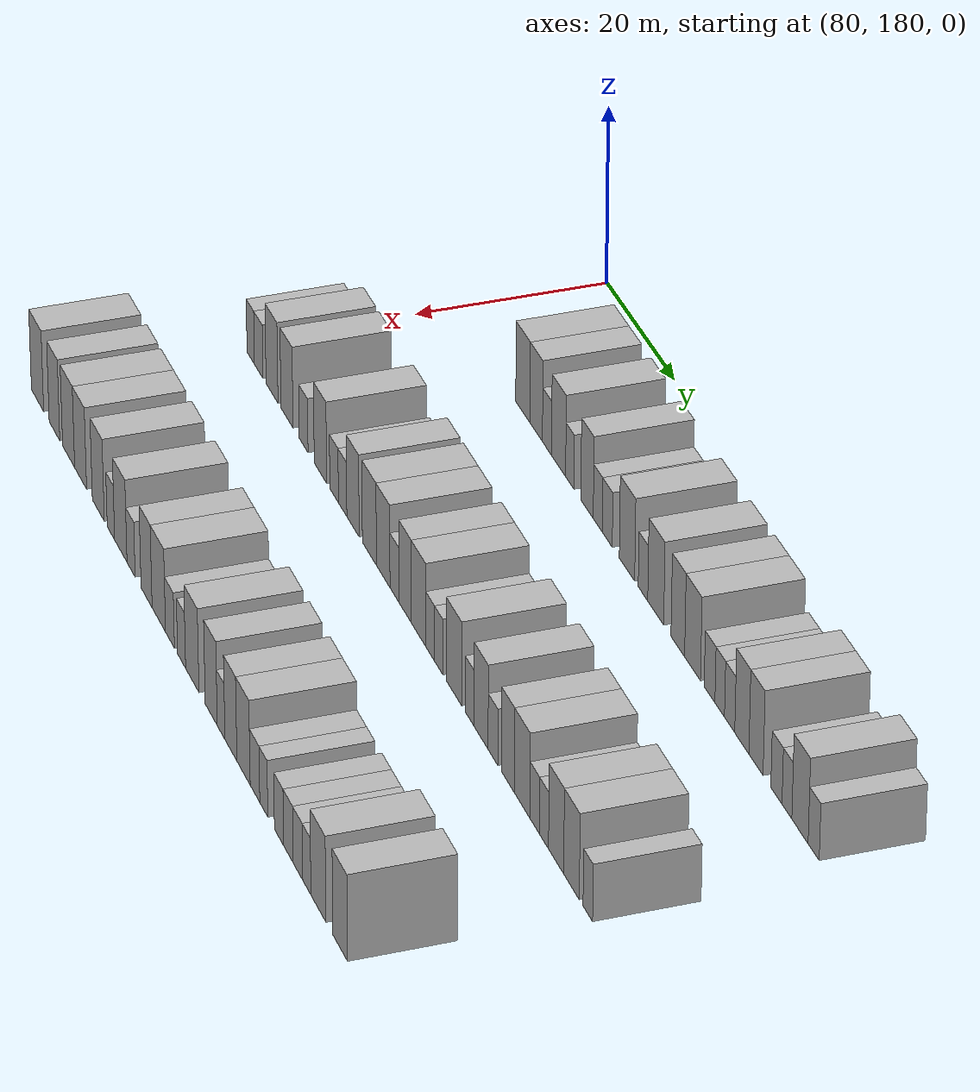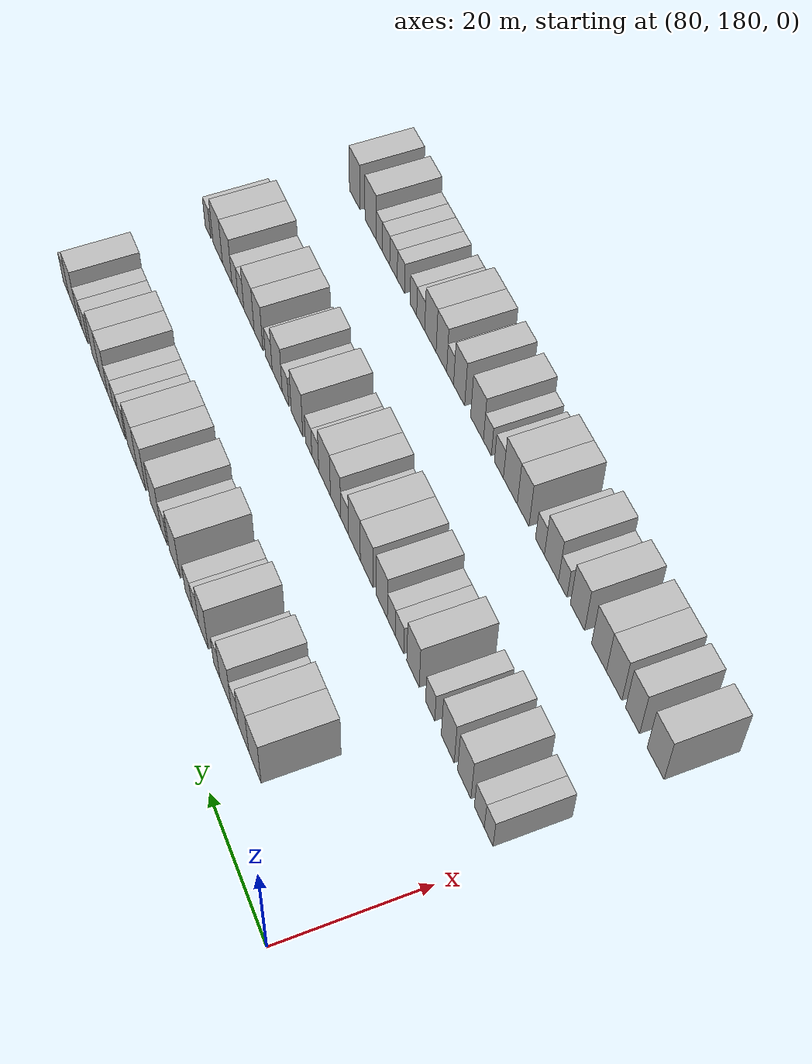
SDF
<sdf version="1.6">
 <world name="default">
  <model name="building_704">
   <static>1</static>
   <pose>91.0000 201.1701 0 0.000000 0.000000 0.000000</pose>
   <link name="link">
    <pose>0 0 4.50 0 0 0</pose>
    <collision name="collision"><geometry><box><size>10.0000 4.3020 9.0000</size></box></geometry></collision>
    <visual name="visual">
     <cast_shadows>0</cast_shadows>
     <geometry><box><size>10.0000 4.3020 9.0000</size></box></geometry>
     <material>
      <script>
       <uri>model://HANNAS_wall/materials/scripts</uri>
       <uri>model://HANNAS_wall/materials/textures</uri>
       <name>vrc/HANNAS_wall</name>
      </script>
     </material>
    </visual>
   </link>
  </model>
  <model name="building_705">
   <static>1</static>
   <pose>91.0000 205.1843 0 0.000000 0.000000 0.000000</pose>
   <link name="link">
    <pose>0 0 4.50 0 0 0</pose>
    <collision name="collision"><geometry><box><size>10.0000 3.7263 9.0000</size></box></geometry></collision>
    <visual name="visual">
     <cast_shadows>0</cast_shadows>
     <geometry><box><size>10.0000 3.7263 9.0000</size></box></geometry>
     <material>
      <script>
       <uri>model://HANNAS_wall/materials/scripts</uri>
       <uri>model://HANNAS_wall/materials/textures</uri>
       <name>vrc/HANNAS_wall</name>
      </script>
     </material>
    </visual>
   </link>
  </model>
  <model name="building_706">
   <static>1</static>
   <pose>91.0000 208.4048 0 0.000000 0.000000 0.000000</pose>
   <link name="link">
    <pose>0 0 3.00 0 0 0</pose>
    <collision name="collision"><geometry><box><size>10.0000 2.7147 6.0000</size></box></geometry></collision>
    <visual name="visual">
     <cast_shadows>0</cast_shadows>
     <geometry><box><size>10.0000 2.7147 6.0000</size></box></geometry>
     <material>
      <script>
       <uri>model://HANNAS_wall/materials/scripts</uri>
       <uri>model://HANNAS_wall/materials/textures</uri>
       <name>vrc/HANNAS_wall</name>
      </script>
     </material>
    </visual>
   </link>
  </model>
  <model name="building_707">
   <static>1</static>
   <pose>91.0000 211.8378 0 0.000000 0.000000 0.000000</pose>
   <link name="link">
    <pose>0 0 4.50 0 0 0</pose>
    <collision name="collision"><geometry><box><size>10.0000 4.1513 9.0000</size></box></geometry></collision>
    <visual name="visual">
     <cast_shadows>0</cast_shadows>
     <geometry><box><size>10.0000 4.1513 9.0000</size></box></geometry>
     <material>
      <script>
       <uri>model://HANNAS_wall/materials/scripts</uri>
       <uri>model://HANNAS_wall/materials/textures</uri>
       <name>vrc/HANNAS_wall</name>
      </script>
     </material>
    </visual>
   </link>
  </model>
  <model name="building_708">
   <static>1</static>
   <pose>91.0000 215.1305 0 0.000000 0.000000 0.000000</pose>
   <link name="link">
    <pose>0 0 3.00 0 0 0</pose>
    <collision name="collision"><geometry><box><size>10.0000 2.4341 6.0000</size></box></geometry></collision>
    <visual name="visual">
     <cast_shadows>0</cast_shadows>
     <geometry><box><size>10.0000 2.4341 6.0000</size></box></geometry>
     <material>
      <script>
       <uri>model://HANNAS_wall/materials/scripts</uri>
       <uri>model://HANNAS_wall/materials/textures</uri>
       <name>vrc/HANNAS_wall</name>
      </script>
     </material>
    </visual>
   </link>
  </model>
  <model name="building_709">
   <static>1</static>
   <pose>91.0000 220.1485 0 0.000000 0.000000 0.000000</pose>
   <link name="link">
    <pose>0 0 4.50 0 0 0</pose>
    <collision name="collision"><geometry><box><size>10.0000 3.6018 9.0000</size></box></geometry></collision>
    <visual name="visual">
     <cast_shadows>0</cast_shadows>
     <geometry><box><size>10.0000 3.6018 9.0000</size></box></geometry>
     <material>
      <script>
       <uri>model://HANNAS_wall/materials/scripts</uri>
       <uri>model://HANNAS_wall/materials/textures</uri>
       <name>vrc/HANNAS_wall</name>
      </script>
     </material>
    </visual>
   </link>
  </model>
  <model name="building_710">
   <static>1</static>
   <pose>91.0000 223.2338 0 0.000000 0.000000 0.000000</pose>
   <link name="link">
    <pose>0 0 3.00 0 0 0</pose>
    <collision name="collision"><geometry><box><size>10.0000 2.5689 6.0000</size></box></geometry></collision>
    <visual name="visual">
     <cast_shadows>0</cast_shadows>
     <geometry><box><size>10.0000 2.5689 6.0000</size></box></geometry>
     <material>
      <script>
       <uri>model://HANNAS_wall/materials/scripts</uri>
       <uri>model://HANNAS_wall/materials/textures</uri>
       <name>vrc/HANNAS_wall</name>
      </script>
     </material>
    </visual>
   </link>
  </model>
  <model name="building_711">
   <static>1</static>
   <pose>91.0000 225.9564 0 0.000000 0.000000 0.000000</pose>
   <link name="link">
    <pose>0 0 3.00 0 0 0</pose>
    <collision name="collision"><geometry><box><size>10.0000 2.8762 6.0000</size></box></geometry></collision>
    <visual name="visual">
     <cast_shadows>0</cast_shadows>
     <geometry><box><size>10.0000 2.8762 6.0000</size></box></geometry>
     <material>
      <script>
       <uri>model://HANNAS_wall/materials/scripts</uri>
       <uri>model://HANNAS_wall/materials/textures</uri>
       <name>vrc/HANNAS_wall</name>
      </script>
     </material>
    </visual>
   </link>
  </model>
  <model name="building_712">
   <static>1</static>
   <pose>91.0000 231.5591 0 0.000000 0.000000 0.000000</pose>
   <link name="link">
    <pose>0 0 4.50 0 0 0</pose>
    <collision name="collision"><geometry><box><size>10.0000 4.3292 9.0000</size></box></geometry></collision>
    <visual name="visual">
     <cast_shadows>0</cast_shadows>
     <geometry><box><size>10.0000 4.3292 9.0000</size></box></geometry>
     <material>
      <script>
       <uri>model://HANNAS_wall/materials/scripts</uri>
       <uri>model://HANNAS_wall/materials/textures</uri>
       <name>vrc/HANNAS_wall</name>
      </script>
     </material>
    </visual>
   </link>
  </model>
  <model name="building_713">
   <static>1</static>
   <pose>91.0000 236.0480 0 0.000000 0.000000 0.000000</pose>
   <link name="link">
    <pose>0 0 3.00 0 0 0</pose>
    <collision name="collision"><geometry><box><size>10.0000 2.6488 6.0000</size></box></geometry></collision>
    <visual name="visual">
     <cast_shadows>0</cast_shadows>
     <geometry><box><size>10.0000 2.6488 6.0000</size></box></geometry>
     <material>
      <script>
       <uri>model://HANNAS_wall/materials/scripts</uri>
       <uri>model://HANNAS_wall/materials/textures</uri>
       <name>vrc/HANNAS_wall</name>
      </script>
     </material>
    </visual>
   </link>
  </model>
  <model name="building_714">
   <static>1</static>
   <pose>91.0000 239.5825 0 0.000000 0.000000 0.000000</pose>
   <link name="link">
    <pose>0 0 4.50 0 0 0</pose>
    <collision name="collision"><geometry><box><size>10.0000 4.4201 9.0000</size></box></geometry></collision>
    <visual name="visual">
     <cast_shadows>0</cast_shadows>
     <geometry><box><size>10.0000 4.4201 9.0000</size></box></geometry>
     <material>
      <script>
       <uri>model://HANNAS_wall/materials/scripts</uri>
       <uri>model://HANNAS_wall/materials/textures</uri>
       <name>vrc/HANNAS_wall</name>
      </script>
     </material>
    </visual>
   </link>
  </model>
  <model name="building_715">
   <static>1</static>
   <pose>91.0000 245.6507 0 0.000000 0.000000 0.000000</pose>
   <link name="link">
    <pose>0 0 4.50 0 0 0</pose>
    <collision name="collision"><geometry><box><size>10.0000 3.7163 9.0000</size></box></geometry></collision>
    <visual name="visual">
     <cast_shadows>0</cast_shadows>
     <geometry><box><size>10.0000 3.7163 9.0000</size></box></geometry>
     <material>
      <script>
       <uri>model://HANNAS_wall/materials/scripts</uri>
       <uri>model://HANNAS_wall/materials/textures</uri>
       <name>vrc/HANNAS_wall</name>
      </script>
     </material>
    </visual>
   </link>
  </model>
  <model name="building_716">
   <static>1</static>
   <pose>91.0000 249.6491 0 0.000000 0.000000 0.000000</pose>
   <link name="link">
    <pose>0 0 4.50 0 0 0</pose>
    <collision name="collision"><geometry><box><size>10.0000 4.2806 9.0000</size></box></geometry></collision>
    <visual name="visual">
     <cast_shadows>0</cast_shadows>
     <geometry><box><size>10.0000 4.2806 9.0000</size></box></geometry>
     <material>
      <script>
       <uri>model://HANNAS_wall/materials/scripts</uri>
       <uri>model://HANNAS_wall/materials/textures</uri>
       <name>vrc/HANNAS_wall</name>
      </script>
     </material>
    </visual>
   </link>
  </model>
  <model name="building_717">
   <static>1</static>
   <pose>91.0000 254.2260 0 0.000000 0.000000 0.000000</pose>
   <link name="link">
    <pose>0 0 3.00 0 0 0</pose>
    <collision name="collision"><geometry><box><size>10.0000 2.8731 6.0000</size></box></geometry></collision>
    <visual name="visual">
     <cast_shadows>0</cast_shadows>
     <geometry><box><size>10.0000 2.8731 6.0000</size></box></geometry>
     <material>
      <script>
       <uri>model://HANNAS_wall/materials/scripts</uri>
       <uri>model://HANNAS_wall/materials/textures</uri>
       <name>vrc/HANNAS_wall</name>
      </script>
     </material>
    </visual>
   </link>
  </model>
  <model name="building_718">
   <static>1</static>
   <pose>91.0000 256.9283 0 0.000000 0.000000 0.000000</pose>
   <link name="link">
    <pose>0 0 3.00 0 0 0</pose>
    <collision name="collision"><geometry><box><size>10.0000 2.5315 6.0000</size></box></geometry></collision>
    <visual name="visual">
     <cast_shadows>0</cast_shadows>
     <geometry><box><size>10.0000 2.5315 6.0000</size></box></geometry>
     <material>
      <script>
       <uri>model://HANNAS_wall/materials/scripts</uri>
       <uri>model://HANNAS_wall/materials/textures</uri>
       <name>vrc/HANNAS_wall</name>
      </script>
     </material>
    </visual>
   </link>
  </model>
  <model name="building_719">
   <static>1</static>
   <pose>91.0000 259.5495 0 0.000000 0.000000 0.000000</pose>
   <link name="link">
    <pose>0 0 3.00 0 0 0</pose>
    <collision name="collision"><geometry><box><size>10.0000 2.7108 6.0000</size></box></geometry></collision>
    <visual name="visual">
     <cast_shadows>0</cast_shadows>
     <geometry><box><size>10.0000 2.7108 6.0000</size></box></geometry>
     <material>
      <script>
       <uri>model://HANNAS_wall/materials/scripts</uri>
       <uri>model://HANNAS_wall/materials/textures</uri>
       <name>vrc/HANNAS_wall</name>
      </script>
     </material>
    </visual>
   </link>
  </model>
  <model name="building_720">
   <static>1</static>
   <pose>91.0000 262.7497 0 0.000000 0.000000 0.000000</pose>
   <link name="link">
    <pose>0 0 4.50 0 0 0</pose>
    <collision name="collision"><geometry><box><size>10.0000 3.6894 9.0000</size></box></geometry></collision>
    <visual name="visual">
     <cast_shadows>0</cast_shadows>
     <geometry><box><size>10.0000 3.6894 9.0000</size></box></geometry>
     <material>
      <script>
       <uri>model://HANNAS_wall/materials/scripts</uri>
       <uri>model://HANNAS_wall/materials/textures</uri>
       <name>vrc/HANNAS_wall</name>
      </script>
     </material>
    </visual>
   </link>
  </model>
  <model name="building_721">
   <static>1</static>
   <pose>91.0000 266.4374 0 0.000000 0.000000 0.000000</pose>
   <link name="link">
    <pose>0 0 4.50 0 0 0</pose>
    <collision name="collision"><geometry><box><size>10.0000 3.6861 9.0000</size></box></geometry></collision>
    <visual name="visual">
     <cast_shadows>0</cast_shadows>
     <geometry><box><size>10.0000 3.6861 9.0000</size></box></geometry>
     <material>
      <script>
       <uri>model://HANNAS_wall/materials/scripts</uri>
       <uri>model://HANNAS_wall/materials/textures</uri>
       <name>vrc/HANNAS_wall</name>
      </script>
     </material>
    </visual>
   </link>
  </model>
  <model name="building_722">
   <static>1</static>
   <pose>91.0000 271.7103 0 0.000000 0.000000 0.000000</pose>
   <link name="link">
    <pose>0 0 3.00 0 0 0</pose>
    <collision name="collision"><geometry><box><size>10.0000 2.8596 6.0000</size></box></geometry></collision>
    <visual name="visual">
     <cast_shadows>0</cast_shadows>
     <geometry><box><size>10.0000 2.8596 6.0000</size></box></geometry>
     <material>
      <script>
       <uri>model://HANNAS_wall/materials/scripts</uri>
       <uri>model://HANNAS_wall/materials/textures</uri>
       <name>vrc/HANNAS_wall</name>
      </script>
     </material>
    </visual>
   </link>
  </model>
  <model name="building_723">
   <static>1</static>
   <pose>91.0000 274.3930 0 0.000000 0.000000 0.000000</pose>
   <link name="link">
    <pose>0 0 3.00 0 0 0</pose>
    <collision name="collision"><geometry><box><size>10.0000 2.5060 6.0000</size></box></geometry></collision>
    <visual name="visual">
     <cast_shadows>0</cast_shadows>
     <geometry><box><size>10.0000 2.5060 6.0000</size></box></geometry>
     <material>
      <script>
       <uri>model://HANNAS_wall/materials/scripts</uri>
       <uri>model://HANNAS_wall/materials/textures</uri>
       <name>vrc/HANNAS_wall</name>
      </script>
     </material>
    </visual>
   </link>
  </model>
  <model name="building_724">
   <static>1</static>
   <pose>91.0000 277.7002 0 0.000000 0.000000 0.000000</pose>
   <link name="link">
    <pose>0 0 4.50 0 0 0</pose>
    <collision name="collision"><geometry><box><size>10.0000 4.1084 9.0000</size></box></geometry></collision>
    <visual name="visual">
     <cast_shadows>0</cast_shadows>
     <geometry><box><size>10.0000 4.1084 9.0000</size></box></geometry>
     <material>
      <script>
       <uri>model://HANNAS_wall/materials/scripts</uri>
       <uri>model://HANNAS_wall/materials/textures</uri>
       <name>vrc/HANNAS_wall</name>
      </script>
     </material>
    </visual>
   </link>
  </model>
  <model name="building_725">
   <static>1</static>
   <pose>91.0000 281.1459 0 0.000000 0.000000 0.000000</pose>
   <link name="link">
    <pose>0 0 3.00 0 0 0</pose>
    <collision name="collision"><geometry><box><size>10.0000 2.7830 6.0000</size></box></geometry></collision>
    <visual name="visual">
     <cast_shadows>0</cast_shadows>
     <geometry><box><size>10.0000 2.7830 6.0000</size></box></geometry>
     <material>
      <script>
       <uri>model://HANNAS_wall/materials/scripts</uri>
       <uri>model://HANNAS_wall/materials/textures</uri>
       <name>vrc/HANNAS_wall</name>
      </script>
     </material>
    </visual>
   </link>
  </model>
  <model name="building_885">
   <static>1</static>
   <pose>113.0000 183.0540 0 0.000000 0.000000 0.000000</pose>
   <link name="link">
    <pose>0 0 3.00 0 0 0</pose>
    <collision name="collision"><geometry><box><size>10.0000 2.4901 6.0000</size></box></geometry></collision>
    <visual name="visual">
     <cast_shadows>0</cast_shadows>
     <geometry><box><size>10.0000 2.4901 6.0000</size></box></geometry>
     <material>
      <script>
       <uri>model://HANNAS_wall/materials/scripts</uri>
       <uri>model://HANNAS_wall/materials/textures</uri>
       <name>vrc/HANNAS_wall</name>
      </script>
     </material>
    </visual>
   </link>
  </model>
  <model name="building_886">
   <static>1</static>
   <pose>113.0000 185.7447 0 0.000000 0.000000 0.000000</pose>
   <link name="link">
    <pose>0 0 3.00 0 0 0</pose>
    <collision name="collision"><geometry><box><size>10.0000 2.8913 6.0000</size></box></geometry></collision>
    <visual name="visual">
     <cast_shadows>0</cast_shadows>
     <geometry><box><size>10.0000 2.8913 6.0000</size></box></geometry>
     <material>
      <script>
       <uri>model://HANNAS_wall/materials/scripts</uri>
       <uri>model://HANNAS_wall/materials/textures</uri>
       <name>vrc/HANNAS_wall</name>
      </script>
     </material>
    </visual>
   </link>
  </model>
  <model name="building_887">
   <static>1</static>
   <pose>113.0000 190.1721 0 0.000000 0.000000 0.000000</pose>
   <link name="link">
    <pose>0 0 4.50 0 0 0</pose>
    <collision name="collision"><geometry><box><size>10.0000 3.9636 9.0000</size></box></geometry></collision>
    <visual name="visual">
     <cast_shadows>0</cast_shadows>
     <geometry><box><size>10.0000 3.9636 9.0000</size></box></geometry>
     <material>
      <script>
       <uri>model://HANNAS_wall/materials/scripts</uri>
       <uri>model://HANNAS_wall/materials/textures</uri>
       <name>vrc/HANNAS_wall</name>
      </script>
     </material>
    </visual>
   </link>
  </model>
  <model name="building_888">
   <static>1</static>
   <pose>113.0000 195.1261 0 0.000000 0.000000 0.000000</pose>
   <link name="link">
    <pose>0 0 4.50 0 0 0</pose>
    <collision name="collision"><geometry><box><size>10.0000 3.9443 9.0000</size></box></geometry></collision>
    <visual name="visual">
     <cast_shadows>0</cast_shadows>
     <geometry><box><size>10.0000 3.9443 9.0000</size></box></geometry>
     <material>
      <script>
       <uri>model://HANNAS_wall/materials/scripts</uri>
       <uri>model://HANNAS_wall/materials/textures</uri>
       <name>vrc/HANNAS_wall</name>
      </script>
     </material>
    </visual>
   </link>
  </model>
  <model name="building_889">
   <static>1</static>
   <pose>113.0000 200.5378 0 0.000000 0.000000 0.000000</pose>
   <link name="link">
    <pose>0 0 3.00 0 0 0</pose>
    <collision name="collision"><geometry><box><size>10.0000 2.8791 6.0000</size></box></geometry></collision>
    <visual name="visual">
     <cast_shadows>0</cast_shadows>
     <geometry><box><size>10.0000 2.8791 6.0000</size></box></geometry>
     <material>
      <script>
       <uri>model://HANNAS_wall/materials/scripts</uri>
       <uri>model://HANNAS_wall/materials/textures</uri>
       <name>vrc/HANNAS_wall</name>
      </script>
     </material>
    </visual>
   </link>
  </model>
  <model name="building_890">
   <static>1</static>
   <pose>113.0000 205.9722 0 0.000000 0.000000 0.000000</pose>
   <link name="link">
    <pose>0 0 4.50 0 0 0</pose>
    <collision name="collision"><geometry><box><size>10.0000 3.9897 9.0000</size></box></geometry></collision>
    <visual name="visual">
     <cast_shadows>0</cast_shadows>
     <geometry><box><size>10.0000 3.9897 9.0000</size></box></geometry>
     <material>
      <script>
       <uri>model://HANNAS_wall/materials/scripts</uri>
       <uri>model://HANNAS_wall/materials/textures</uri>
       <name>vrc/HANNAS_wall</name>
      </script>
     </material>
    </visual>
   </link>
  </model>
  <model name="building_891">
   <static>1</static>
   <pose>113.0000 210.3285 0 0.000000 0.000000 0.000000</pose>
   <link name="link">
    <pose>0 0 3.00 0 0 0</pose>
    <collision name="collision"><geometry><box><size>10.0000 2.7229 6.0000</size></box></geometry></collision>
    <visual name="visual">
     <cast_shadows>0</cast_shadows>
     <geometry><box><size>10.0000 2.7229 6.0000</size></box></geometry>
     <material>
      <script>
       <uri>model://HANNAS_wall/materials/scripts</uri>
       <uri>model://HANNAS_wall/materials/textures</uri>
       <name>vrc/HANNAS_wall</name>
      </script>
     </material>
    </visual>
   </link>
  </model>
  <model name="building_892">
   <static>1</static>
   <pose>113.0000 213.0136 0 0.000000 0.000000 0.000000</pose>
   <link name="link">
    <pose>0 0 3.00 0 0 0</pose>
    <collision name="collision"><geometry><box><size>10.0000 2.6472 6.0000</size></box></geometry></collision>
    <visual name="visual">
     <cast_shadows>0</cast_shadows>
     <geometry><box><size>10.0000 2.6472 6.0000</size></box></geometry>
     <material>
      <script>
       <uri>model://HANNAS_wall/materials/scripts</uri>
       <uri>model://HANNAS_wall/materials/textures</uri>
       <name>vrc/HANNAS_wall</name>
      </script>
     </material>
    </visual>
   </link>
  </model>
  <model name="building_893">
   <static>1</static>
   <pose>113.0000 216.2671 0 0.000000 0.000000 0.000000</pose>
   <link name="link">
    <pose>0 0 4.50 0 0 0</pose>
    <collision name="collision"><geometry><box><size>10.0000 3.8598 9.0000</size></box></geometry></collision>
    <visual name="visual">
     <cast_shadows>0</cast_shadows>
     <geometry><box><size>10.0000 3.8598 9.0000</size></box></geometry>
     <material>
      <script>
       <uri>model://HANNAS_wall/materials/scripts</uri>
       <uri>model://HANNAS_wall/materials/textures</uri>
       <name>vrc/HANNAS_wall</name>
      </script>
     </material>
    </visual>
   </link>
  </model>
  <model name="building_894">
   <static>1</static>
   <pose>113.0000 221.3694 0 0.000000 0.000000 0.000000</pose>
   <link name="link">
    <pose>0 0 4.50 0 0 0</pose>
    <collision name="collision"><geometry><box><size>10.0000 4.3448 9.0000</size></box></geometry></collision>
    <visual name="visual">
     <cast_shadows>0</cast_shadows>
     <geometry><box><size>10.0000 4.3448 9.0000</size></box></geometry>
     <material>
      <script>
       <uri>model://HANNAS_wall/materials/scripts</uri>
       <uri>model://HANNAS_wall/materials/textures</uri>
       <name>vrc/HANNAS_wall</name>
      </script>
     </material>
    </visual>
   </link>
  </model>
  <model name="building_895">
   <static>1</static>
   <pose>113.0000 225.6153 0 0.000000 0.000000 0.000000</pose>
   <link name="link">
    <pose>0 0 4.50 0 0 0</pose>
    <collision name="collision"><geometry><box><size>10.0000 4.1471 9.0000</size></box></geometry></collision>
    <visual name="visual">
     <cast_shadows>0</cast_shadows>
     <geometry><box><size>10.0000 4.1471 9.0000</size></box></geometry>
     <material>
      <script>
       <uri>model://HANNAS_wall/materials/scripts</uri>
       <uri>model://HANNAS_wall/materials/textures</uri>
       <name>vrc/HANNAS_wall</name>
      </script>
     </material>
    </visual>
   </link>
  </model>
  <model name="building_896">
   <static>1</static>
   <pose>113.0000 229.0577 0 0.000000 0.000000 0.000000</pose>
   <link name="link">
    <pose>0 0 3.00 0 0 0</pose>
    <collision name="collision"><geometry><box><size>10.0000 2.7376 6.0000</size></box></geometry></collision>
    <visual name="visual">
     <cast_shadows>0</cast_shadows>
     <geometry><box><size>10.0000 2.7376 6.0000</size></box></geometry>
     <material>
      <script>
       <uri>model://HANNAS_wall/materials/scripts</uri>
       <uri>model://HANNAS_wall/materials/textures</uri>
       <name>vrc/HANNAS_wall</name>
      </script>
     </material>
    </visual>
   </link>
  </model>
  <model name="building_897">
   <static>1</static>
   <pose>113.0000 232.2977 0 0.000000 0.000000 0.000000</pose>
   <link name="link">
    <pose>0 0 4.50 0 0 0</pose>
    <collision name="collision"><geometry><box><size>10.0000 3.7424 9.0000</size></box></geometry></collision>
    <visual name="visual">
     <cast_shadows>0</cast_shadows>
     <geometry><box><size>10.0000 3.7424 9.0000</size></box></geometry>
     <material>
      <script>
       <uri>model://HANNAS_wall/materials/scripts</uri>
       <uri>model://HANNAS_wall/materials/textures</uri>
       <name>vrc/HANNAS_wall</name>
      </script>
     </material>
    </visual>
   </link>
  </model>
  <model name="building_898">
   <static>1</static>
   <pose>113.0000 236.3201 0 0.000000 0.000000 0.000000</pose>
   <link name="link">
    <pose>0 0 4.50 0 0 0</pose>
    <collision name="collision"><geometry><box><size>10.0000 4.3025 9.0000</size></box></geometry></collision>
    <visual name="visual">
     <cast_shadows>0</cast_shadows>
     <geometry><box><size>10.0000 4.3025 9.0000</size></box></geometry>
     <material>
      <script>
       <uri>model://HANNAS_wall/materials/scripts</uri>
       <uri>model://HANNAS_wall/materials/textures</uri>
       <name>vrc/HANNAS_wall</name>
      </script>
     </material>
    </visual>
   </link>
  </model>
  <model name="building_899">
   <static>1</static>
   <pose>113.0000 239.7786 0 0.000000 0.000000 0.000000</pose>
   <link name="link">
    <pose>0 0 3.00 0 0 0</pose>
    <collision name="collision"><geometry><box><size>10.0000 2.6145 6.0000</size></box></geometry></collision>
    <visual name="visual">
     <cast_shadows>0</cast_shadows>
     <geometry><box><size>10.0000 2.6145 6.0000</size></box></geometry>
     <material>
      <script>
       <uri>model://HANNAS_wall/materials/scripts</uri>
       <uri>model://HANNAS_wall/materials/textures</uri>
       <name>vrc/HANNAS_wall</name>
      </script>
     </material>
    </visual>
   </link>
  </model>
  <model name="building_900">
   <static>1</static>
   <pose>113.0000 242.2951 0 0.000000 0.000000 0.000000</pose>
   <link name="link">
    <pose>0 0 3.00 0 0 0</pose>
    <collision name="collision"><geometry><box><size>10.0000 2.4185 6.0000</size></box></geometry></collision>
    <visual name="visual">
     <cast_shadows>0</cast_shadows>
     <geometry><box><size>10.0000 2.4185 6.0000</size></box></geometry>
     <material>
      <script>
       <uri>model://HANNAS_wall/materials/scripts</uri>
       <uri>model://HANNAS_wall/materials/textures</uri>
       <name>vrc/HANNAS_wall</name>
      </script>
     </material>
    </visual>
   </link>
  </model>
  <model name="building_901">
   <static>1</static>
   <pose>113.0000 246.7437 0 0.000000 0.000000 0.000000</pose>
   <link name="link">
    <pose>0 0 4.50 0 0 0</pose>
    <collision name="collision"><geometry><box><size>10.0000 4.4786 9.0000</size></box></geometry></collision>
    <visual name="visual">
     <cast_shadows>0</cast_shadows>
     <geometry><box><size>10.0000 4.4786 9.0000</size></box></geometry>
     <material>
      <script>
       <uri>model://HANNAS_wall/materials/scripts</uri>
       <uri>model://HANNAS_wall/materials/textures</uri>
       <name>vrc/HANNAS_wall</name>
      </script>
     </material>
    </visual>
   </link>
  </model>
  <model name="building_902">
   <static>1</static>
   <pose>113.0000 251.2729 0 0.000000 0.000000 0.000000</pose>
   <link name="link">
    <pose>0 0 3.00 0 0 0</pose>
    <collision name="collision"><geometry><box><size>10.0000 2.5800 6.0000</size></box></geometry></collision>
    <visual name="visual">
     <cast_shadows>0</cast_shadows>
     <geometry><box><size>10.0000 2.5800 6.0000</size></box></geometry>
     <material>
      <script>
       <uri>model://HANNAS_wall/materials/scripts</uri>
       <uri>model://HANNAS_wall/materials/textures</uri>
       <name>vrc/HANNAS_wall</name>
      </script>
     </material>
    </visual>
   </link>
  </model>
  <model name="building_903">
   <static>1</static>
   <pose>113.0000 254.5674 0 0.000000 0.000000 0.000000</pose>
   <link name="link">
    <pose>0 0 4.50 0 0 0</pose>
    <collision name="collision"><geometry><box><size>10.0000 4.0089 9.0000</size></box></geometry></collision>
    <visual name="visual">
     <cast_shadows>0</cast_shadows>
     <geometry><box><size>10.0000 4.0089 9.0000</size></box></geometry>
     <material>
      <script>
       <uri>model://HANNAS_wall/materials/scripts</uri>
       <uri>model://HANNAS_wall/materials/textures</uri>
       <name>vrc/HANNAS_wall</name>
      </script>
     </material>
    </visual>
   </link>
  </model>
  <model name="building_904">
   <static>1</static>
   <pose>113.0000 257.9487 0 0.000000 0.000000 0.000000</pose>
   <link name="link">
    <pose>0 0 3.00 0 0 0</pose>
    <collision name="collision"><geometry><box><size>10.0000 2.7537 6.0000</size></box></geometry></collision>
    <visual name="visual">
     <cast_shadows>0</cast_shadows>
     <geometry><box><size>10.0000 2.7537 6.0000</size></box></geometry>
     <material>
      <script>
       <uri>model://HANNAS_wall/materials/scripts</uri>
       <uri>model://HANNAS_wall/materials/textures</uri>
       <name>vrc/HANNAS_wall</name>
      </script>
     </material>
    </visual>
   </link>
  </model>
  <model name="building_905">
   <static>1</static>
   <pose>113.0000 262.1372 0 0.000000 0.000000 0.000000</pose>
   <link name="link">
    <pose>0 0 4.50 0 0 0</pose>
    <collision name="collision"><geometry><box><size>10.0000 3.6233 9.0000</size></box></geometry></collision>
    <visual name="visual">
     <cast_shadows>0</cast_shadows>
     <geometry><box><size>10.0000 3.6233 9.0000</size></box></geometry>
     <material>
      <script>
       <uri>model://HANNAS_wall/materials/scripts</uri>
       <uri>model://HANNAS_wall/materials/textures</uri>
       <name>vrc/HANNAS_wall</name>
      </script>
     </material>
    </visual>
   </link>
  </model>
  <model name="building_906">
   <static>1</static>
   <pose>113.0000 266.1116 0 0.000000 0.000000 0.000000</pose>
   <link name="link">
    <pose>0 0 4.50 0 0 0</pose>
    <collision name="collision"><geometry><box><size>10.0000 4.3255 9.0000</size></box></geometry></collision>
    <visual name="visual">
     <cast_shadows>0</cast_shadows>
     <geometry><box><size>10.0000 4.3255 9.0000</size></box></geometry>
     <material>
      <script>
       <uri>model://HANNAS_wall/materials/scripts</uri>
       <uri>model://HANNAS_wall/materials/textures</uri>
       <name>vrc/HANNAS_wall</name>
      </script>
     </material>
    </visual>
   </link>
  </model>
  <model name="building_907">
   <static>1</static>
   <pose>113.0000 269.5659 0 0.000000 0.000000 0.000000</pose>
   <link name="link">
    <pose>0 0 3.00 0 0 0</pose>
    <collision name="collision"><geometry><box><size>10.0000 2.5829 6.0000</size></box></geometry></collision>
    <visual name="visual">
     <cast_shadows>0</cast_shadows>
     <geometry><box><size>10.0000 2.5829 6.0000</size></box></geometry>
     <material>
      <script>
       <uri>model://HANNAS_wall/materials/scripts</uri>
       <uri>model://HANNAS_wall/materials/textures</uri>
       <name>vrc/HANNAS_wall</name>
      </script>
     </material>
    </visual>
   </link>
  </model>
  <model name="building_908">
   <static>1</static>
   <pose>113.0000 272.1192 0 0.000000 0.000000 0.000000</pose>
   <link name="link">
    <pose>0 0 3.00 0 0 0</pose>
    <collision name="collision"><geometry><box><size>10.0000 2.5236 6.0000</size></box></geometry></collision>
    <visual name="visual">
     <cast_shadows>0</cast_shadows>
     <geometry><box><size>10.0000 2.5236 6.0000</size></box></geometry>
     <material>
      <script>
       <uri>model://HANNAS_wall/materials/scripts</uri>
       <uri>model://HANNAS_wall/materials/textures</uri>
       <name>vrc/HANNAS_wall</name>
      </script>
     </material>
    </visual>
   </link>
  </model>
  <model name="building_909">
   <static>1</static>
   <pose>113.0000 275.4424 0 0.000000 0.000000 0.000000</pose>
   <link name="link">
    <pose>0 0 4.50 0 0 0</pose>
    <collision name="collision"><geometry><box><size>10.0000 4.1228 9.0000</size></box></geometry></collision>
    <visual name="visual">
     <cast_shadows>0</cast_shadows>
     <geometry><box><size>10.0000 4.1228 9.0000</size></box></geometry>
     <material>
      <script>
       <uri>model://HANNAS_wall/materials/scripts</uri>
       <uri>model://HANNAS_wall/materials/textures</uri>
       <name>vrc/HANNAS_wall</name>
      </script>
     </material>
    </visual>
   </link>
  </model>
  <model name="building_910">
   <static>1</static>
   <pose>113.0000 279.5978 0 0.000000 0.000000 0.000000</pose>
   <link name="link">
    <pose>0 0 4.50 0 0 0</pose>
    <collision name="collision"><geometry><box><size>10.0000 4.1882 9.0000</size></box></geometry></collision>
    <visual name="visual">
     <cast_shadows>0</cast_shadows>
     <geometry><box><size>10.0000 4.1882 9.0000</size></box></geometry>
     <material>
      <script>
       <uri>model://HANNAS_wall/materials/scripts</uri>
       <uri>model://HANNAS_wall/materials/textures</uri>
       <name>vrc/HANNAS_wall</name>
      </script>
     </material>
    </visual>
   </link>
  </model>
  <model name="building_911">
   <static>1</static>
   <pose>113.0000 283.9622 0 0.000000 0.000000 0.000000</pose>
   <link name="link">
    <pose>0 0 3.00 0 0 0</pose>
    <collision name="collision"><geometry><box><size>10.0000 2.5406 6.0000</size></box></geometry></collision>
    <visual name="visual">
     <cast_shadows>0</cast_shadows>
     <geometry><box><size>10.0000 2.5406 6.0000</size></box></geometry>
     <material>
      <script>
       <uri>model://HANNAS_wall/materials/scripts</uri>
       <uri>model://HANNAS_wall/materials/textures</uri>
       <name>vrc/HANNAS_wall</name>
      </script>
     </material>
    </visual>
   </link>
  </model>
  <model name="building_1064">
   <static>1</static>
   <pose>135.0000 184.3835 0 0.000000 0.000000 0.000000</pose>
   <link name="link">
    <pose>0 0 4.50 0 0 0</pose>
    <collision name="collision"><geometry><box><size>10.0000 4.4313 9.0000</size></box></geometry></collision>
    <visual name="visual">
     <cast_shadows>0</cast_shadows>
     <geometry><box><size>10.0000 4.4313 9.0000</size></box></geometry>
     <material>
      <script>
       <uri>model://HANNAS_wall/materials/scripts</uri>
       <uri>model://HANNAS_wall/materials/textures</uri>
       <name>vrc/HANNAS_wall</name>
      </script>
     </material>
    </visual>
   </link>
  </model>
  <model name="building_1065">
   <static>1</static>
   <pose>135.0000 190.4942 0 0.000000 0.000000 0.000000</pose>
   <link name="link">
    <pose>0 0 4.50 0 0 0</pose>
    <collision name="collision"><geometry><box><size>10.0000 3.7901 9.0000</size></box></geometry></collision>
    <visual name="visual">
     <cast_shadows>0</cast_shadows>
     <geometry><box><size>10.0000 3.7901 9.0000</size></box></geometry>
     <material>
      <script>
       <uri>model://HANNAS_wall/materials/scripts</uri>
       <uri>model://HANNAS_wall/materials/textures</uri>
       <name>vrc/HANNAS_wall</name>
      </script>
     </material>
    </visual>
   </link>
  </model>
  <model name="building_1066">
   <static>1</static>
   <pose>135.0000 195.5281 0 0.000000 0.000000 0.000000</pose>
   <link name="link">
    <pose>0 0 4.50 0 0 0</pose>
    <collision name="collision"><geometry><box><size>10.0000 4.2776 9.0000</size></box></geometry></collision>
    <visual name="visual">
     <cast_shadows>0</cast_shadows>
     <geometry><box><size>10.0000 4.2776 9.0000</size></box></geometry>
     <material>
      <script>
       <uri>model://HANNAS_wall/materials/scripts</uri>
       <uri>model://HANNAS_wall/materials/textures</uri>
       <name>vrc/HANNAS_wall</name>
      </script>
     </material>
    </visual>
   </link>
  </model>
  <model name="building_1067">
   <static>1</static>
   <pose>135.0000 199.7613 0 0.000000 0.000000 0.000000</pose>
   <link name="link">
    <pose>0 0 4.50 0 0 0</pose>
    <collision name="collision"><geometry><box><size>10.0000 4.1888 9.0000</size></box></geometry></collision>
    <visual name="visual">
     <cast_shadows>0</cast_shadows>
     <geometry><box><size>10.0000 4.1888 9.0000</size></box></geometry>
     <material>
      <script>
       <uri>model://HANNAS_wall/materials/scripts</uri>
       <uri>model://HANNAS_wall/materials/textures</uri>
       <name>vrc/HANNAS_wall</name>
      </script>
     </material>
    </visual>
   </link>
  </model>
  <model name="building_1068">
   <static>1</static>
   <pose>135.0000 205.9228 0 0.000000 0.000000 0.000000</pose>
   <link name="link">
    <pose>0 0 4.50 0 0 0</pose>
    <collision name="collision"><geometry><box><size>10.0000 4.1341 9.0000</size></box></geometry></collision>
    <visual name="visual">
     <cast_shadows>0</cast_shadows>
     <geometry><box><size>10.0000 4.1341 9.0000</size></box></geometry>
     <material>
      <script>
       <uri>model://HANNAS_wall/materials/scripts</uri>
       <uri>model://HANNAS_wall/materials/textures</uri>
       <name>vrc/HANNAS_wall</name>
      </script>
     </material>
    </visual>
   </link>
  </model>
  <model name="building_1069">
   <static>1</static>
   <pose>135.0000 210.2603 0 0.000000 0.000000 0.000000</pose>
   <link name="link">
    <pose>0 0 3.00 0 0 0</pose>
    <collision name="collision"><geometry><box><size>10.0000 2.5409 6.0000</size></box></geometry></collision>
    <visual name="visual">
     <cast_shadows>0</cast_shadows>
     <geometry><box><size>10.0000 2.5409 6.0000</size></box></geometry>
     <material>
      <script>
       <uri>model://HANNAS_wall/materials/scripts</uri>
       <uri>model://HANNAS_wall/materials/textures</uri>
       <name>vrc/HANNAS_wall</name>
      </script>
     </material>
    </visual>
   </link>
  </model>
  <model name="building_1070">
   <static>1</static>
   <pose>135.0000 213.6287 0 0.000000 0.000000 0.000000</pose>
   <link name="link">
    <pose>0 0 4.50 0 0 0</pose>
    <collision name="collision"><geometry><box><size>10.0000 4.1961 9.0000</size></box></geometry></collision>
    <visual name="visual">
     <cast_shadows>0</cast_shadows>
     <geometry><box><size>10.0000 4.1961 9.0000</size></box></geometry>
     <material>
      <script>
       <uri>model://HANNAS_wall/materials/scripts</uri>
       <uri>model://HANNAS_wall/materials/textures</uri>
       <name>vrc/HANNAS_wall</name>
      </script>
     </material>
    </visual>
   </link>
  </model>
  <model name="building_1071">
   <static>1</static>
   <pose>135.0000 217.0955 0 0.000000 0.000000 0.000000</pose>
   <link name="link">
    <pose>0 0 3.00 0 0 0</pose>
    <collision name="collision"><geometry><box><size>10.0000 2.7374 6.0000</size></box></geometry></collision>
    <visual name="visual">
     <cast_shadows>0</cast_shadows>
     <geometry><box><size>10.0000 2.7374 6.0000</size></box></geometry>
     <material>
      <script>
       <uri>model://HANNAS_wall/materials/scripts</uri>
       <uri>model://HANNAS_wall/materials/textures</uri>
       <name>vrc/HANNAS_wall</name>
      </script>
     </material>
    </visual>
   </link>
  </model>
  <model name="building_1072">
   <static>1</static>
   <pose>135.0000 222.2990 0 0.000000 0.000000 0.000000</pose>
   <link name="link">
    <pose>0 0 4.50 0 0 0</pose>
    <collision name="collision"><geometry><box><size>10.0000 3.6697 9.0000</size></box></geometry></collision>
    <visual name="visual">
     <cast_shadows>0</cast_shadows>
     <geometry><box><size>10.0000 3.6697 9.0000</size></box></geometry>
     <material>
      <script>
       <uri>model://HANNAS_wall/materials/scripts</uri>
       <uri>model://HANNAS_wall/materials/textures</uri>
       <name>vrc/HANNAS_wall</name>
      </script>
     </material>
    </visual>
   </link>
  </model>
  <model name="building_1073">
   <static>1</static>
   <pose>135.0000 226.3531 0 0.000000 0.000000 0.000000</pose>
   <link name="link">
    <pose>0 0 4.50 0 0 0</pose>
    <collision name="collision"><geometry><box><size>10.0000 4.4385 9.0000</size></box></geometry></collision>
    <visual name="visual">
     <cast_shadows>0</cast_shadows>
     <geometry><box><size>10.0000 4.4385 9.0000</size></box></geometry>
     <material>
      <script>
       <uri>model://HANNAS_wall/materials/scripts</uri>
       <uri>model://HANNAS_wall/materials/textures</uri>
       <name>vrc/HANNAS_wall</name>
      </script>
     </material>
    </visual>
   </link>
  </model>
  <model name="building_1074">
   <static>1</static>
   <pose>135.0000 230.0307 0 0.000000 0.000000 0.000000</pose>
   <link name="link">
    <pose>0 0 3.00 0 0 0</pose>
    <collision name="collision"><geometry><box><size>10.0000 2.9166 6.0000</size></box></geometry></collision>
    <visual name="visual">
     <cast_shadows>0</cast_shadows>
     <geometry><box><size>10.0000 2.9166 6.0000</size></box></geometry>
     <material>
      <script>
       <uri>model://HANNAS_wall/materials/scripts</uri>
       <uri>model://HANNAS_wall/materials/textures</uri>
       <name>vrc/HANNAS_wall</name>
      </script>
     </material>
    </visual>
   </link>
  </model>
  <model name="building_1075">
   <static>1</static>
   <pose>135.0000 233.7960 0 0.000000 0.000000 0.000000</pose>
   <link name="link">
    <pose>0 0 3.00 0 0 0</pose>
    <collision name="collision"><geometry><box><size>10.0000 2.6141 6.0000</size></box></geometry></collision>
    <visual name="visual">
     <cast_shadows>0</cast_shadows>
     <geometry><box><size>10.0000 2.6141 6.0000</size></box></geometry>
     <material>
      <script>
       <uri>model://HANNAS_wall/materials/scripts</uri>
       <uri>model://HANNAS_wall/materials/textures</uri>
       <name>vrc/HANNAS_wall</name>
      </script>
     </material>
    </visual>
   </link>
  </model>
  <model name="building_1076">
   <static>1</static>
   <pose>135.0000 237.2480 0 0.000000 0.000000 0.000000</pose>
   <link name="link">
    <pose>0 0 4.50 0 0 0</pose>
    <collision name="collision"><geometry><box><size>10.0000 4.2901 9.0000</size></box></geometry></collision>
    <visual name="visual">
     <cast_shadows>0</cast_shadows>
     <geometry><box><size>10.0000 4.2901 9.0000</size></box></geometry>
     <material>
      <script>
       <uri>model://HANNAS_wall/materials/scripts</uri>
       <uri>model://HANNAS_wall/materials/textures</uri>
       <name>vrc/HANNAS_wall</name>
      </script>
     </material>
    </visual>
   </link>
  </model>
  <model name="building_1077">
   <static>1</static>
   <pose>135.0000 243.3018 0 0.000000 0.000000 0.000000</pose>
   <link name="link">
    <pose>0 0 4.50 0 0 0</pose>
    <collision name="collision"><geometry><box><size>10.0000 3.8175 9.0000</size></box></geometry></collision>
    <visual name="visual">
     <cast_shadows>0</cast_shadows>
     <geometry><box><size>10.0000 3.8175 9.0000</size></box></geometry>
     <material>
      <script>
       <uri>model://HANNAS_wall/materials/scripts</uri>
       <uri>model://HANNAS_wall/materials/textures</uri>
       <name>vrc/HANNAS_wall</name>
      </script>
     </material>
    </visual>
   </link>
  </model>
  <model name="building_1078">
   <static>1</static>
   <pose>135.0000 246.4153 0 0.000000 0.000000 0.000000</pose>
   <link name="link">
    <pose>0 0 3.00 0 0 0</pose>
    <collision name="collision"><geometry><box><size>10.0000 2.4095 6.0000</size></box></geometry></collision>
    <visual name="visual">
     <cast_shadows>0</cast_shadows>
     <geometry><box><size>10.0000 2.4095 6.0000</size></box></geometry>
     <material>
      <script>
       <uri>model://HANNAS_wall/materials/scripts</uri>
       <uri>model://HANNAS_wall/materials/textures</uri>
       <name>vrc/HANNAS_wall</name>
      </script>
     </material>
    </visual>
   </link>
  </model>
  <model name="building_1079">
   <static>1</static>
   <pose>135.0000 249.4870 0 0.000000 0.000000 0.000000</pose>
   <link name="link">
    <pose>0 0 4.50 0 0 0</pose>
    <collision name="collision"><geometry><box><size>10.0000 3.7339 9.0000</size></box></geometry></collision>
    <visual name="visual">
     <cast_shadows>0</cast_shadows>
     <geometry><box><size>10.0000 3.7339 9.0000</size></box></geometry>
     <material>
      <script>
       <uri>model://HANNAS_wall/materials/scripts</uri>
       <uri>model://HANNAS_wall/materials/textures</uri>
       <name>vrc/HANNAS_wall</name>
      </script>
     </material>
    </visual>
   </link>
  </model>
  <model name="building_1080">
   <static>1</static>
   <pose>135.0000 253.4028 0 0.000000 0.000000 0.000000</pose>
   <link name="link">
    <pose>0 0 4.50 0 0 0</pose>
    <collision name="collision"><geometry><box><size>10.0000 4.0976 9.0000</size></box></geometry></collision>
    <visual name="visual">
     <cast_shadows>0</cast_shadows>
     <geometry><box><size>10.0000 4.0976 9.0000</size></box></geometry>
     <material>
      <script>
       <uri>model://HANNAS_wall/materials/scripts</uri>
       <uri>model://HANNAS_wall/materials/textures</uri>
       <name>vrc/HANNAS_wall</name>
      </script>
     </material>
    </visual>
   </link>
  </model>
  <model name="building_1081">
   <static>1</static>
   <pose>135.0000 256.9206 0 0.000000 0.000000 0.000000</pose>
   <link name="link">
    <pose>0 0 3.00 0 0 0</pose>
    <collision name="collision"><geometry><box><size>10.0000 2.9382 6.0000</size></box></geometry></collision>
    <visual name="visual">
     <cast_shadows>0</cast_shadows>
     <geometry><box><size>10.0000 2.9382 6.0000</size></box></geometry>
     <material>
      <script>
       <uri>model://HANNAS_wall/materials/scripts</uri>
       <uri>model://HANNAS_wall/materials/textures</uri>
       <name>vrc/HANNAS_wall</name>
      </script>
     </material>
    </visual>
   </link>
  </model>
  <model name="building_1082">
   <static>1</static>
   <pose>135.0000 259.6122 0 0.000000 0.000000 0.000000</pose>
   <link name="link">
    <pose>0 0 3.00 0 0 0</pose>
    <collision name="collision"><geometry><box><size>10.0000 2.4450 6.0000</size></box></geometry></collision>
    <visual name="visual">
     <cast_shadows>0</cast_shadows>
     <geometry><box><size>10.0000 2.4450 6.0000</size></box></geometry>
     <material>
      <script>
       <uri>model://HANNAS_wall/materials/scripts</uri>
       <uri>model://HANNAS_wall/materials/textures</uri>
       <name>vrc/HANNAS_wall</name>
      </script>
     </material>
    </visual>
   </link>
  </model>
  <model name="building_1083">
   <static>1</static>
   <pose>135.0000 264.2285 0 0.000000 0.000000 0.000000</pose>
   <link name="link">
    <pose>0 0 3.00 0 0 0</pose>
    <collision name="collision"><geometry><box><size>10.0000 2.7875 6.0000</size></box></geometry></collision>
    <visual name="visual">
     <cast_shadows>0</cast_shadows>
     <geometry><box><size>10.0000 2.7875 6.0000</size></box></geometry>
     <material>
      <script>
       <uri>model://HANNAS_wall/materials/scripts</uri>
       <uri>model://HANNAS_wall/materials/textures</uri>
       <name>vrc/HANNAS_wall</name>
      </script>
     </material>
    </visual>
   </link>
  </model>
  <model name="building_1084">
   <static>1</static>
   <pose>135.0000 267.0468 0 0.000000 0.000000 0.000000</pose>
   <link name="link">
    <pose>0 0 3.00 0 0 0</pose>
    <collision name="collision"><geometry><box><size>10.0000 2.8491 6.0000</size></box></geometry></collision>
    <visual name="visual">
     <cast_shadows>0</cast_shadows>
     <geometry><box><size>10.0000 2.8491 6.0000</size></box></geometry>
     <material>
      <script>
       <uri>model://HANNAS_wall/materials/scripts</uri>
       <uri>model://HANNAS_wall/materials/textures</uri>
       <name>vrc/HANNAS_wall</name>
      </script>
     </material>
    </visual>
   </link>
  </model>
  <model name="building_1085">
   <static>1</static>
   <pose>135.0000 269.8850 0 0.000000 0.000000 0.000000</pose>
   <link name="link">
    <pose>0 0 3.00 0 0 0</pose>
    <collision name="collision"><geometry><box><size>10.0000 2.8274 6.0000</size></box></geometry></collision>
    <visual name="visual">
     <cast_shadows>0</cast_shadows>
     <geometry><box><size>10.0000 2.8274 6.0000</size></box></geometry>
     <material>
      <script>
       <uri>model://HANNAS_wall/materials/scripts</uri>
       <uri>model://HANNAS_wall/materials/textures</uri>
       <name>vrc/HANNAS_wall</name>
      </script>
     </material>
    </visual>
   </link>
  </model>
  <model name="building_1086">
   <static>1</static>
   <pose>135.0000 272.5016 0 0.000000 0.000000 0.000000</pose>
   <link name="link">
    <pose>0 0 3.00 0 0 0</pose>
    <collision name="collision"><geometry><box><size>10.0000 2.4058 6.0000</size></box></geometry></collision>
    <visual name="visual">
     <cast_shadows>0</cast_shadows>
     <geometry><box><size>10.0000 2.4058 6.0000</size></box></geometry>
     <material>
      <script>
       <uri>model://HANNAS_wall/materials/scripts</uri>
       <uri>model://HANNAS_wall/materials/textures</uri>
       <name>vrc/HANNAS_wall</name>
      </script>
     </material>
    </visual>
   </link>
  </model>
  <model name="building_1087">
   <static>1</static>
   <pose>135.0000 275.9072 0 0.000000 0.000000 0.000000</pose>
   <link name="link">
    <pose>0 0 4.50 0 0 0</pose>
    <collision name="collision"><geometry><box><size>10.0000 4.4054 9.0000</size></box></geometry></collision>
    <visual name="visual">
     <cast_shadows>0</cast_shadows>
     <geometry><box><size>10.0000 4.4054 9.0000</size></box></geometry>
     <material>
      <script>
       <uri>model://HANNAS_wall/materials/scripts</uri>
       <uri>model://HANNAS_wall/materials/textures</uri>
       <name>vrc/HANNAS_wall</name>
      </script>
     </material>
    </visual>
   </link>
  </model>
  <model name="building_1088">
   <static>1</static>
   <pose>135.0000 282.2179 0 0.000000 0.000000 0.000000</pose>
   <link name="link">
    <pose>0 0 4.50 0 0 0</pose>
    <collision name="collision"><geometry><box><size>10.0000 4.2160 9.0000</size></box></geometry></collision>
    <visual name="visual">
     <cast_shadows>0</cast_shadows>
     <geometry><box><size>10.0000 4.2160 9.0000</size></box></geometry>
     <material>
      <script>
       <uri>model://HANNAS_wall/materials/scripts</uri>
       <uri>model://HANNAS_wall/materials/textures</uri>
       <name>vrc/HANNAS_wall</name>
      </script>
     </material>
    </visual>
   </link>
  </model>
 </world>
</sdf>
